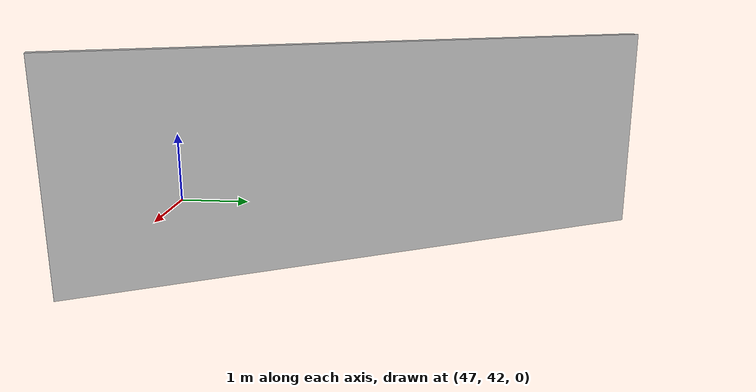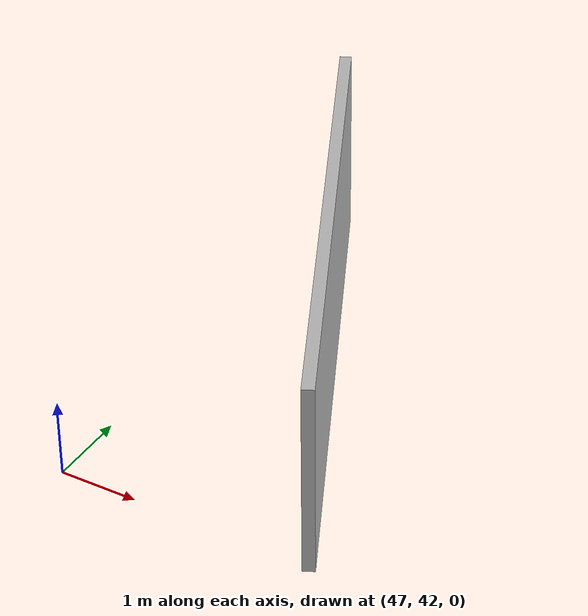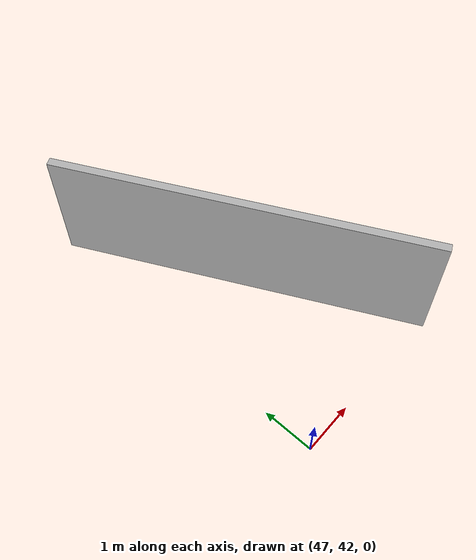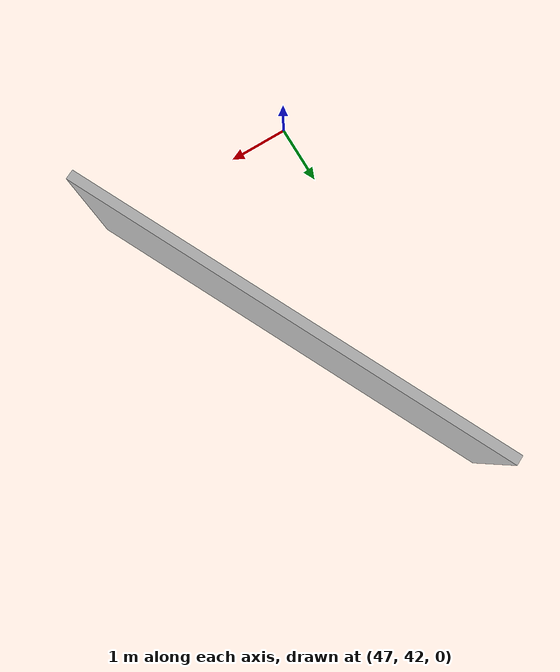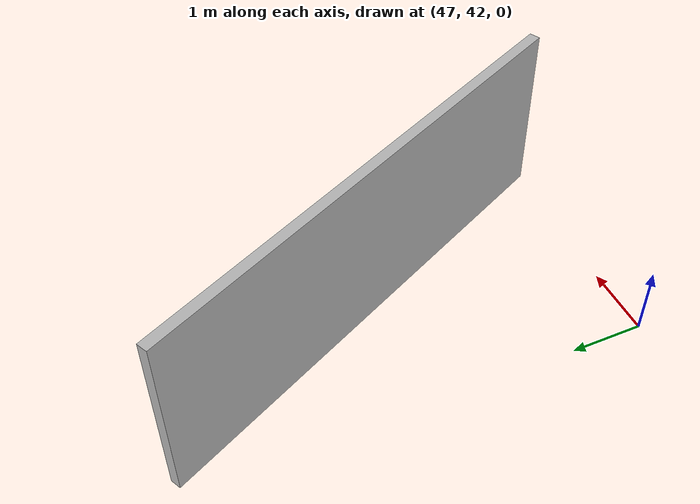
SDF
<?xml version="1.0" ?>
<sdf version="1.6">
  <model name="sps_0800">
    <pose frame="">0 0 0 0 -0 0</pose>
    <static>0</static>
    <self_collide>0</self_collide>
    <allow_auto_disable>0</allow_auto_disable>
    <link name="Wall1081">
      <kinematic>0</kinematic>
      <gravity>1</gravity>
      <self_collide>0</self_collide>
      <collision name="collision">
        <geometry>
          <box>
            <size>7.0589 0.15 2.5</size>
          </box>
        </geometry>
        <pose frame="">0 0 0 0 -0 0</pose>
      </collision>
      <visual name="visual">
        <geometry>
          <box>
            <size>7.0589 0.15 2.5</size>
          </box>
        </geometry>
        <pose frame="">0 0 0 0 -0 0</pose>
        <cast_shadows>1</cast_shadows>
        <transparency>0.0</transparency>
      </visual>
      <pose frame="">48.7694 45.1027 1.25 0 -0 2.02758</pose>
    </link>
  </model>
</sdf>
